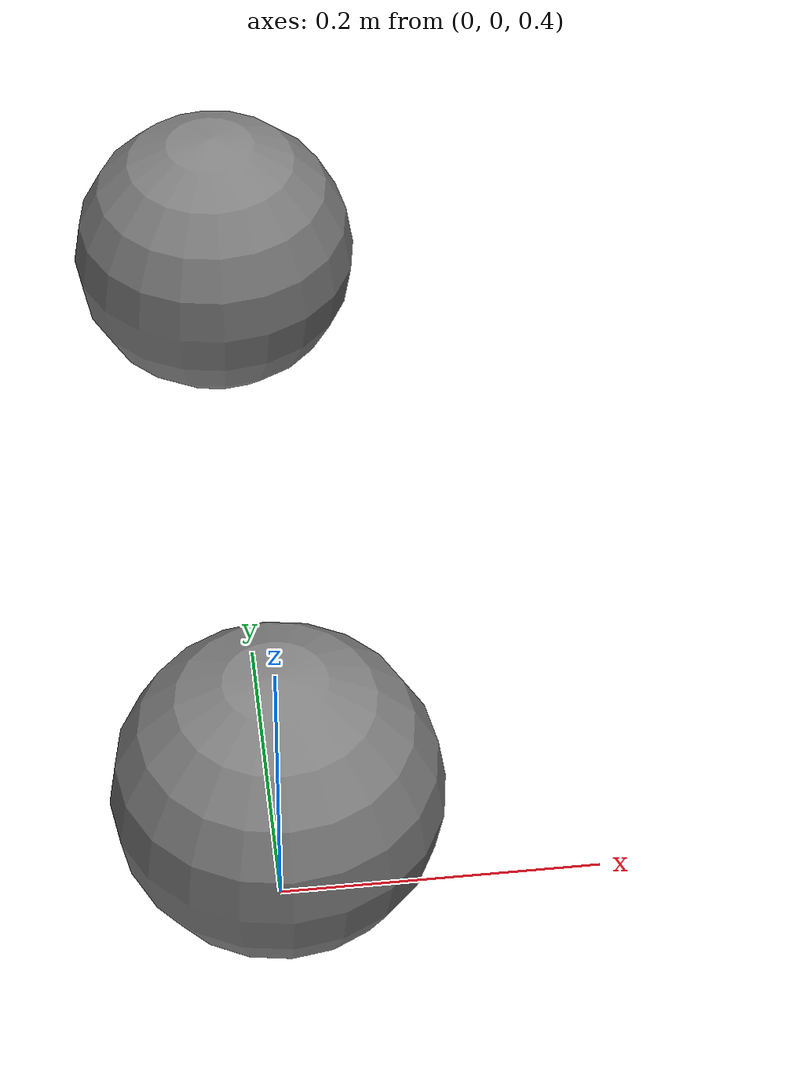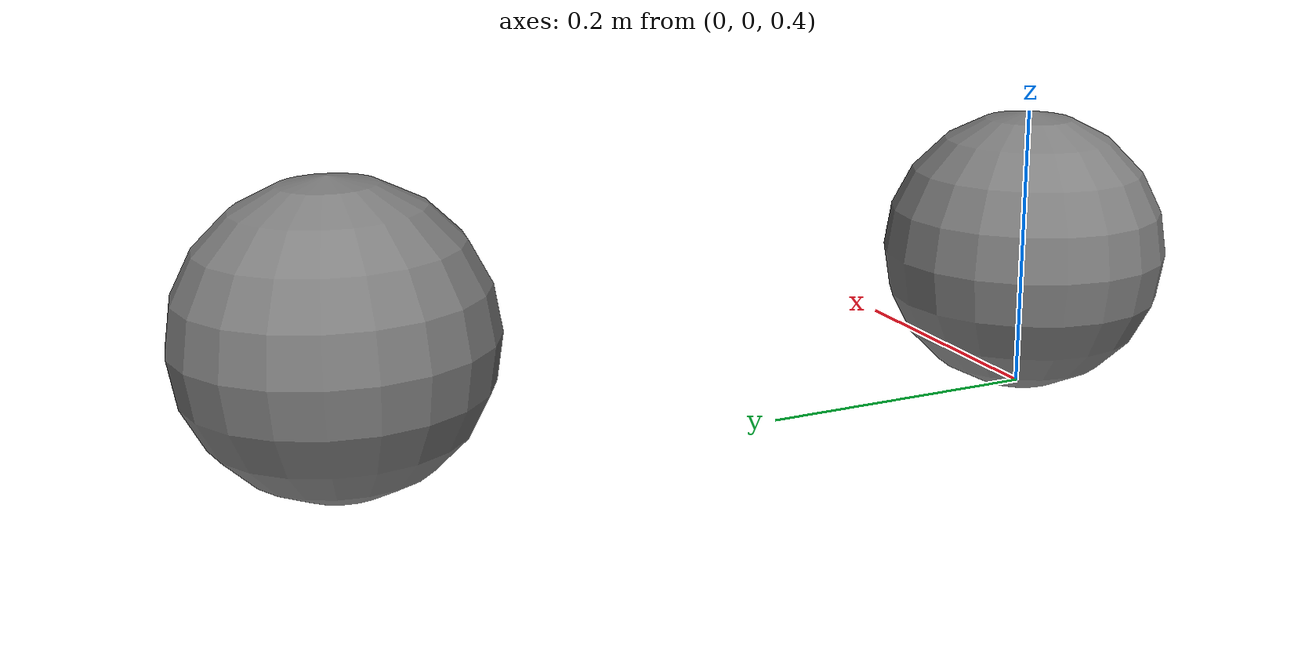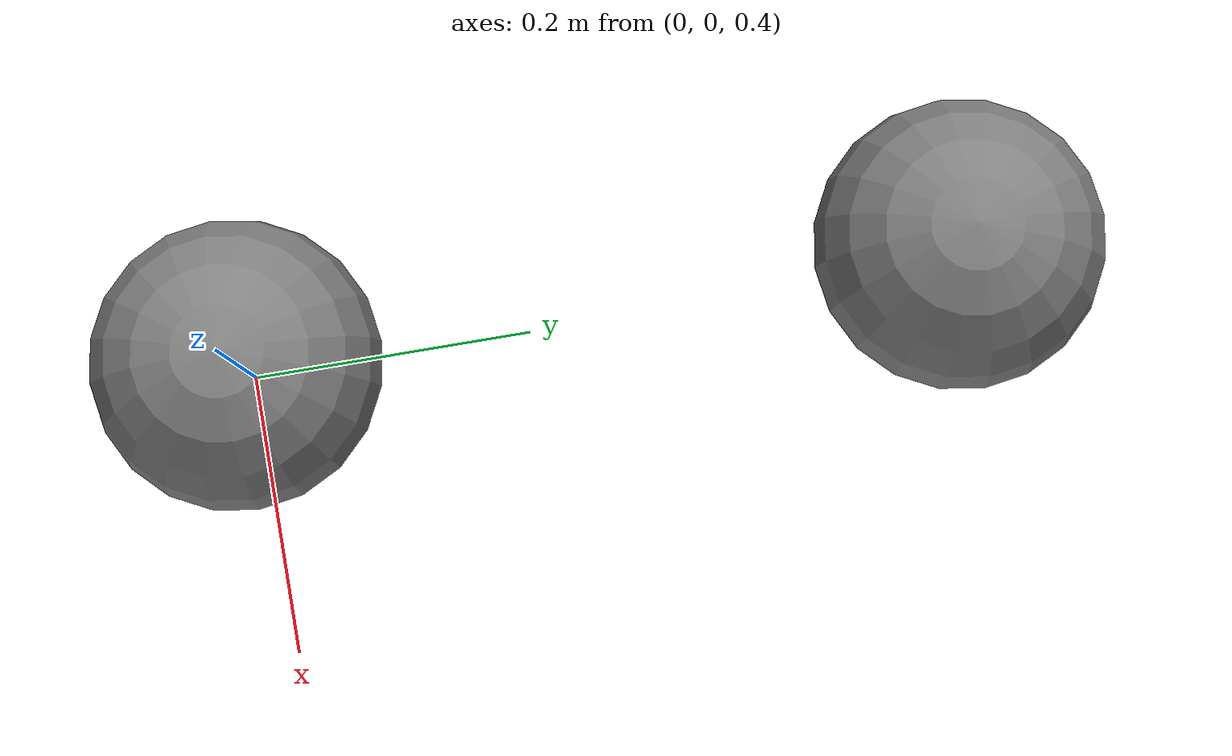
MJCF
<mujoco model="mixed">
            <option gravity="0 0 -9.81" timestep="0.001" solver="Newton"/>
            <worldbody>
                <body name="a" pos="0 0 0.5">
                    <joint name="j1" type="hinge" axis="0 0 1" frictionloss="1.0"/>
                    <geom type="sphere" size="0.1" mass="1.0"/>
                    <body name="b" pos="0 0.5 0">
                        <joint name="j2" type="hinge" axis="0 0 1"/>
                        <geom type="sphere" size="0.1" mass="1.0"/>
                    </body>
                </body>
            </worldbody>
            <equality>
                <joint joint1="j1" joint2="j2"/>
            </equality>
        </mujoco>
